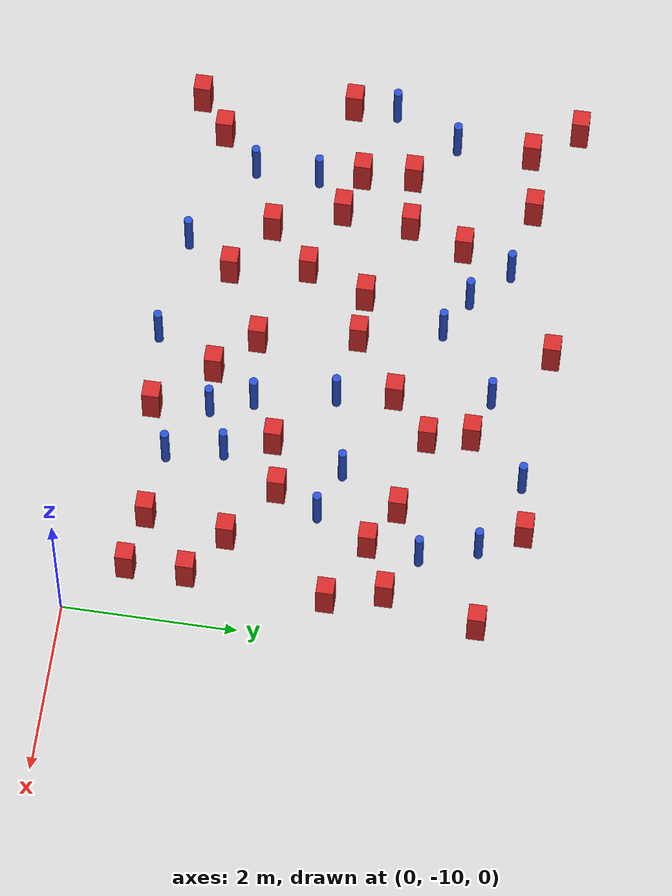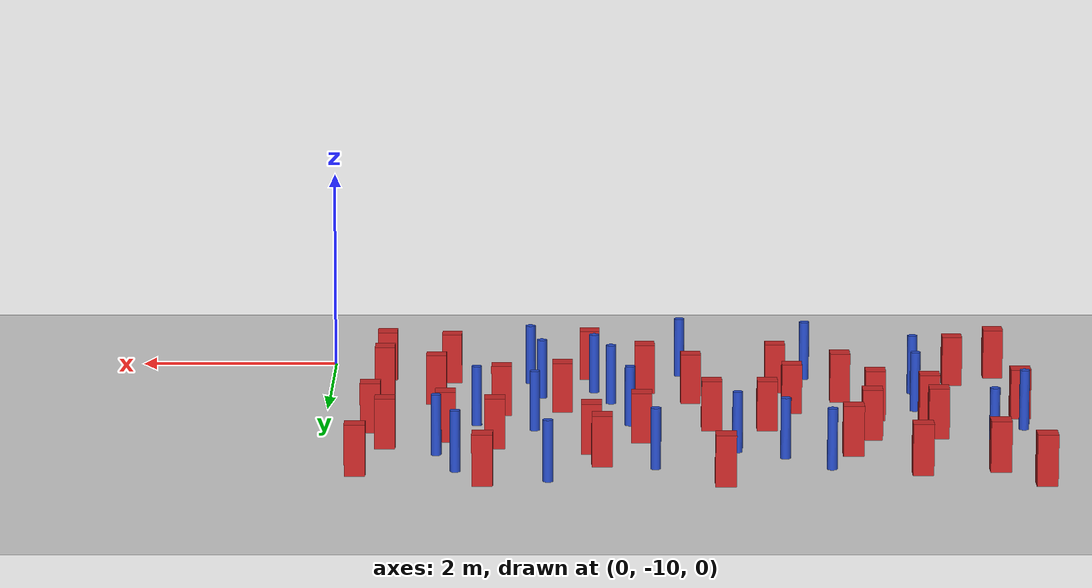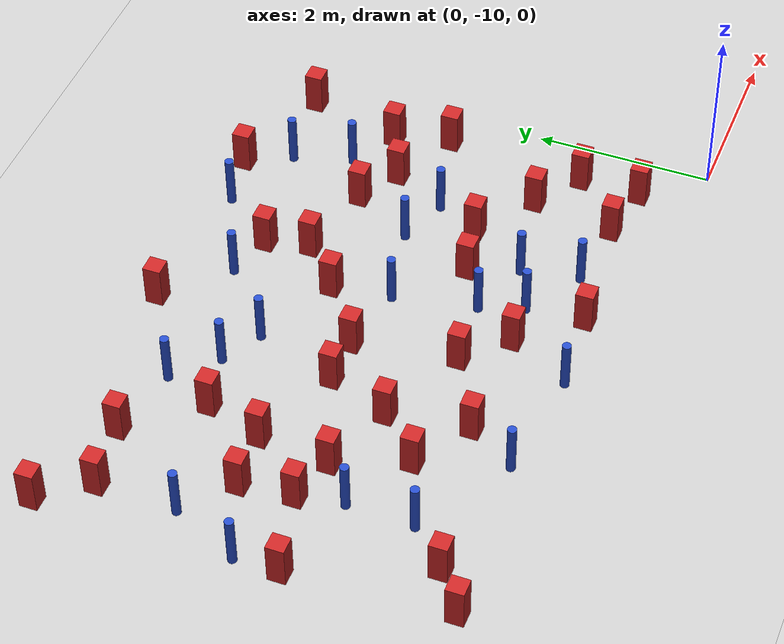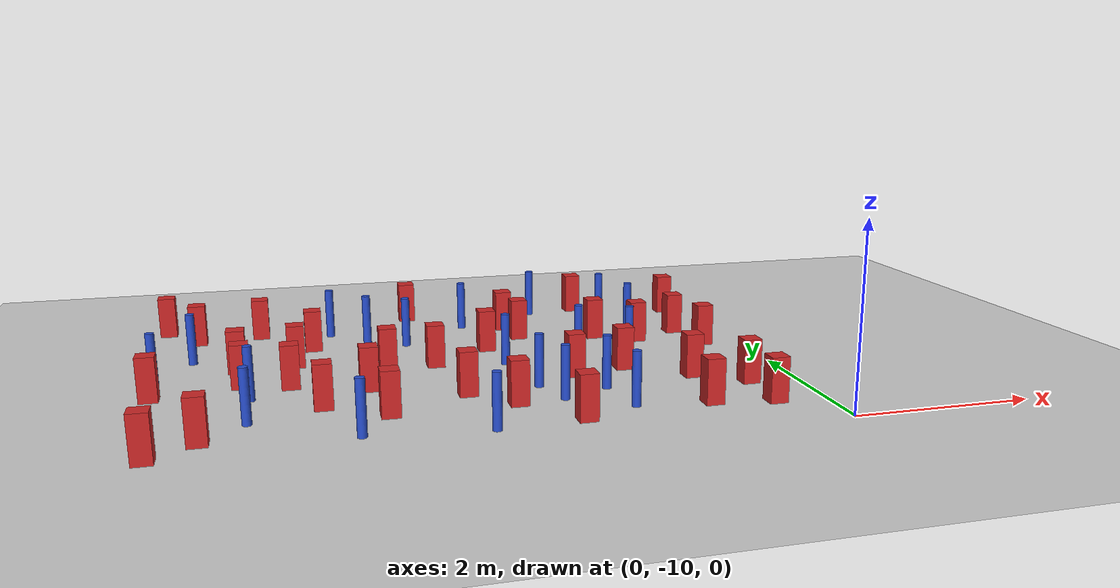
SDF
<sdf version="1.6">
 <world name="default">
  <model name="ground_plane">
   <static>1</static>
   <link name="link">
    <collision name="collision">
     <geometry><plane><normal>0 0 1</normal><size>100 100</size></plane></geometry>
     <surface><friction><ode><mu>100</mu><mu2>50</mu2></ode></friction></surface>
    </collision>
    <visual name="visual">
     <cast_shadows>0</cast_shadows>
     <geometry><plane><normal>0 0 1</normal><size>100 100</size></plane></geometry>
     <material>
      <ambient>1.0 1.0 1.0 1.0</ambient>
      <diffuse>0.8 0.8 0.8 1.0</diffuse>
      <specular>0.01 0.01 0.01 1.000000</specular>
     </material>
    </visual>
   </link>
  </model>
  <model name="pole_obstacle4">
   <static>true</static>
   <pose>-3.54911267592 -9.46715608694 -3.09024884793e-07 -7.19054271912e-07 -2.11315075137e-07 -1.93935509267e-07</pose>
   <link name="link">
    <pose>0 0 0.3 0 -0 0</pose>
    <inertial>
     <mass>1</mass>
     <inertia><ixx>0.145833</ixx><ixy>0</ixy><ixz>0</ixz><iyy>0.145833</iyy><iyz>0</iyz><izz>0.125</izz></inertia>
    </inertial>
    <collision name="collision">
     <geometry><cylinder><radius>0.05</radius><length>.6</length></cylinder></geometry>
    </collision>
    <visual name="visual">
     <geometry><cylinder><radius>0.05</radius><length>.6</length></cylinder></geometry>
     <material>
      <script><name>Gazebo/Blue</name><uri>file://media/materials/scripts/gazebo.material</uri></script>
     </material>
    </visual>
   </link>
  </model>
  <model name="square_post_obstacle2">
   <static>true</static>
   <pose>-4.63876810251 -7.87885461352 -4.36207812815e-07 3.75137919937e-06 9.77721102514e-07 2.47381364184e-05</pose>
   <link name="link">
    <pose>0 0 0.25 0 -0 0</pose>
    <inertial>
     <mass>100</mass>
     <inertia>
      <ixx>0.166667</ixx>
      <ixy>0</ixy>
      <ixz>0</ixz>
      <iyy>0.166667</iyy>
      <iyz>0</iyz>
      <izz>0.166667</izz>
     </inertia>
    </inertial>
    <collision name="collision"><geometry><box><size>.2 .2 .5</size></box></geometry></collision>
    <visual name="visual">
     <geometry><box><size>.2 .2 .5</size></box></geometry>
     <material>
      <script><name>Gazebo/Red</name><uri>file://media/materials/scripts/gazebo.material</uri></script>
     </material>
    </visual>
   </link>
  </model>
  <model name="pole_obstacle7">
   <static>true</static>
   <pose>-1.32874386624 -5.45448428314 -3.09024884793e-07 -7.19054271912e-07 -2.11315075134e-07 -1.93935509265e-07</pose>
   <link name="link">
    <pose>0 0 0.3 0 -0 0</pose>
    <inertial>
     <mass>1</mass>
     <inertia><ixx>0.145833</ixx><ixy>0</ixy><ixz>0</ixz><iyy>0.145833</iyy><iyz>0</iyz><izz>0.125</izz></inertia>
    </inertial>
    <collision name="collision">
     <geometry><cylinder><radius>0.05</radius><length>.6</length></cylinder></geometry>
    </collision>
    <visual name="visual">
     <geometry><cylinder><radius>0.05</radius><length>.6</length></cylinder></geometry>
     <material>
      <script><name>Gazebo/Blue</name><uri>file://media/materials/scripts/gazebo.material</uri></script>
     </material>
    </visual>
   </link>
  </model>
  <model name="pole_obstacle8">
   <static>true</static>
   <pose>-6.90155995579 -7.15182244249 -3.09024884793e-07 -7.19054271911e-07 -2.1131507516e-07 -1.93935509277e-07</pose>
   <link name="link">
    <pose>0 0 0.3 0 -0 0</pose>
    <inertial>
     <mass>1</mass>
     <inertia><ixx>0.145833</ixx><ixy>0</ixy><ixz>0</ixz><iyy>0.145833</iyy><iyz>0</iyz><izz>0.125</izz></inertia>
    </inertial>
    <collision name="collision">
     <geometry><cylinder><radius>0.05</radius><length>.6</length></cylinder></geometry>
    </collision>
    <visual name="visual">
     <geometry><cylinder><radius>0.05</radius><length>.6</length></cylinder></geometry>
     <material>
      <script><name>Gazebo/Blue</name><uri>file://media/materials/scripts/gazebo.material</uri></script>
     </material>
    </visual>
   </link>
  </model>
  <model name="square_post_obstacle13">
   <static>true</static>
   <pose>-1.69398379049 -6.42221799246 -4.36207812815e-07 3.75137919937e-06 9.77721102514e-07 2.47381364184e-05</pose>
   <link name="link">
    <pose>0 0 0.25 0 -0 0</pose>
    <inertial>
     <mass>100</mass>
     <inertia>
      <ixx>0.166667</ixx>
      <ixy>0</ixy>
      <ixz>0</ixz>
      <iyy>0.166667</iyy>
      <iyz>0</iyz>
      <izz>0.166667</izz>
     </inertia>
    </inertial>
    <collision name="collision"><geometry><box><size>.2 .2 .5</size></box></geometry></collision>
    <visual name="visual">
     <geometry><box><size>.2 .2 .5</size></box></geometry>
     <material>
      <script><name>Gazebo/Red</name><uri>file://media/materials/scripts/gazebo.material</uri></script>
     </material>
    </visual>
   </link>
  </model>
  <model name="pole_obstacle21">
   <static>true</static>
   <pose>-2.67258424488 -8.73272913505 -3.09024884848e-07 -7.19054271902e-07 -2.11315075199e-07 -1.93935509286e-07</pose>
   <link name="link">
    <pose>0 0 0.3 0 -0 0</pose>
    <inertial>
     <mass>1</mass>
     <inertia><ixx>0.145833</ixx><ixy>0</ixy><ixz>0</ixz><iyy>0.145833</iyy><iyz>0</iyz><izz>0.125</izz></inertia>
    </inertial>
    <collision name="collision">
     <geometry><cylinder><radius>0.05</radius><length>.6</length></cylinder></geometry>
    </collision>
    <visual name="visual">
     <geometry><cylinder><radius>0.05</radius><length>.6</length></cylinder></geometry>
     <material>
      <script><name>Gazebo/Blue</name><uri>file://media/materials/scripts/gazebo.material</uri></script>
     </material>
    </visual>
   </link>
  </model>
  <model name="pole_obstacle22">
   <static>true</static>
   <pose>-4.9305122079 -5.54442485208 -3.09024884793e-07 -7.19054271911e-07 -2.1131507516e-07 -1.93935509277e-07</pose>
   <link name="link">
    <pose>0 0 0.3 0 -0 0</pose>
    <inertial>
     <mass>1</mass>
     <inertia><ixx>0.145833</ixx><ixy>0</ixy><ixz>0</ixz><iyy>0.145833</iyy><iyz>0</iyz><izz>0.125</izz></inertia>
    </inertial>
    <collision name="collision">
     <geometry><cylinder><radius>0.05</radius><length>.6</length></cylinder></geometry>
    </collision>
    <visual name="visual">
     <geometry><cylinder><radius>0.05</radius><length>.6</length></cylinder></geometry>
     <material>
      <script><name>Gazebo/Blue</name><uri>file://media/materials/scripts/gazebo.material</uri></script>
     </material>
    </visual>
   </link>
  </model>
  <model name="pole_obstacle29">
   <static>true</static>
   <pose>-6.54652882044 -6.38740867804 -3.09024884793e-07 -7.19054271911e-07 -2.1131507516e-07 -1.93935509277e-07</pose>
   <link name="link">
    <pose>0 0 0.3 0 -0 0</pose>
    <inertial>
     <mass>1</mass>
     <inertia><ixx>0.145833</ixx><ixy>0</ixy><ixz>0</ixz><iyy>0.145833</iyy><iyz>0</iyz><izz>0.125</izz></inertia>
    </inertial>
    <collision name="collision">
     <geometry><cylinder><radius>0.05</radius><length>.6</length></cylinder></geometry>
    </collision>
    <visual name="visual">
     <geometry><cylinder><radius>0.05</radius><length>.6</length></cylinder></geometry>
     <material>
      <script><name>Gazebo/Blue</name><uri>file://media/materials/scripts/gazebo.material</uri></script>
     </material>
    </visual>
   </link>
  </model>
  <model name="square_post_obstacle28">
   <static>true</static>
   <pose>-5.78509453878 -5.38407037042 -4.36207812815e-07 3.75137919937e-06 9.77721102514e-07 2.47381364184e-05</pose>
   <link name="link">
    <pose>0 0 0.25 0 -0 0</pose>
    <inertial>
     <mass>100</mass>
     <inertia>
      <ixx>0.166667</ixx>
      <ixy>0</ixy>
      <ixz>0</ixz>
      <iyy>0.166667</iyy>
      <iyz>0</iyz>
      <izz>0.166667</izz>
     </inertia>
    </inertial>
    <collision name="collision"><geometry><box><size>.2 .2 .5</size></box></geometry></collision>
    <visual name="visual">
     <geometry><box><size>.2 .2 .5</size></box></geometry>
     <material>
      <script><name>Gazebo/Red</name><uri>file://media/materials/scripts/gazebo.material</uri></script>
     </material>
    </visual>
   </link>
  </model>
  <model name="square_post_obstacle32">
   <static>true</static>
   <pose>-2.63112076132 -6.21255872255 -4.36207812815e-07 3.75137919937e-06 9.77721102514e-07 2.47381364184e-05</pose>
   <link name="link">
    <pose>0 0 0.25 0 -0 0</pose>
    <inertial>
     <mass>100</mass>
     <inertia>
      <ixx>0.166667</ixx>
      <ixy>0</ixy>
      <ixz>0</ixz>
      <iyy>0.166667</iyy>
      <iyz>0</iyz>
      <izz>0.166667</izz>
     </inertia>
    </inertial>
    <collision name="collision"><geometry><box><size>.2 .2 .5</size></box></geometry></collision>
    <visual name="visual">
     <geometry><box><size>.2 .2 .5</size></box></geometry>
     <material>
      <script><name>Gazebo/Red</name><uri>file://media/materials/scripts/gazebo.material</uri></script>
     </material>
    </visual>
   </link>
  </model>
  <model name="square_post_obstacle33">
   <static>true</static>
   <pose>-1.59513884642 -4.96967767956 -4.36207812815e-07 3.75137919937e-06 9.77721102514e-07 2.47381364184e-05</pose>
   <link name="link">
    <pose>0 0 0.25 0 -0 0</pose>
    <inertial>
     <mass>100</mass>
     <inertia>
      <ixx>0.166667</ixx>
      <ixy>0</ixy>
      <ixz>0</ixz>
      <iyy>0.166667</iyy>
      <iyz>0</iyz>
      <izz>0.166667</izz>
     </inertia>
    </inertial>
    <collision name="collision"><geometry><box><size>.2 .2 .5</size></box></geometry></collision>
    <visual name="visual">
     <geometry><box><size>.2 .2 .5</size></box></geometry>
     <material>
      <script><name>Gazebo/Red</name><uri>file://media/materials/scripts/gazebo.material</uri></script>
     </material>
    </visual>
   </link>
  </model>
  <model name="pole_obstacle45">
   <static>true</static>
   <pose>-1.50566126562 -7.31761407004 -3.09024884793e-07 -7.19054271912e-07 -2.11315075134e-07 -1.93935509265e-07</pose>
   <link name="link">
    <pose>0 0 0.3 0 -0 0</pose>
    <inertial>
     <mass>1</mass>
     <inertia><ixx>0.145833</ixx><ixy>0</ixy><ixz>0</ixz><iyy>0.145833</iyy><iyz>0</iyz><izz>0.125</izz></inertia>
    </inertial>
    <collision name="collision">
     <geometry><cylinder><radius>0.05</radius><length>.6</length></cylinder></geometry>
    </collision>
    <visual name="visual">
     <geometry><cylinder><radius>0.05</radius><length>.6</length></cylinder></geometry>
     <material>
      <script><name>Gazebo/Blue</name><uri>file://media/materials/scripts/gazebo.material</uri></script>
     </material>
    </visual>
   </link>
  </model>
  <model name="pole_obstacle56">
   <static>true</static>
   <pose>-4.82676930628 -9.31786836573 -3.09024884793e-07 -7.19054271912e-07 -2.1131507513e-07 -1.93935509261e-07</pose>
   <link name="link">
    <pose>0 0 0.3 0 -0 0</pose>
    <inertial>
     <mass>1</mass>
     <inertia><ixx>0.145833</ixx><ixy>0</ixy><ixz>0</ixz><iyy>0.145833</iyy><iyz>0</iyz><izz>0.125</izz></inertia>
    </inertial>
    <collision name="collision">
     <geometry><cylinder><radius>0.05</radius><length>.6</length></cylinder></geometry>
    </collision>
    <visual name="visual">
     <geometry><cylinder><radius>0.05</radius><length>.6</length></cylinder></geometry>
     <material>
      <script><name>Gazebo/Blue</name><uri>file://media/materials/scripts/gazebo.material</uri></script>
     </material>
    </visual>
   </link>
  </model>
  <model name="square_post_obstacle53">
   <static>true</static>
   <pose>-5.1628788721 -6.1271187025 -4.36207812815e-07 3.75137919937e-06 9.77721102514e-07 2.47381364184e-05</pose>
   <link name="link">
    <pose>0 0 0.25 0 -0 0</pose>
    <inertial>
     <mass>100</mass>
     <inertia>
      <ixx>0.166667</ixx>
      <ixy>0</ixy>
      <ixz>0</ixz>
      <iyy>0.166667</iyy>
      <iyz>0</iyz>
      <izz>0.166667</izz>
     </inertia>
    </inertial>
    <collision name="collision"><geometry><box><size>.2 .2 .5</size></box></geometry></collision>
    <visual name="visual">
     <geometry><box><size>.2 .2 .5</size></box></geometry>
     <material>
      <script><name>Gazebo/Red</name><uri>file://media/materials/scripts/gazebo.material</uri></script>
     </material>
    </visual>
   </link>
  </model>
  <model name="square_post_obstacle68">
   <static>true</static>
   <pose>-3.18331321468 -8.76154640307 -4.36207812815e-07 3.75137919937e-06 9.77721102514e-07 2.47381364184e-05</pose>
   <link name="link">
    <pose>0 0 0.25 0 -0 0</pose>
    <inertial>
     <mass>100</mass>
     <inertia>
      <ixx>0.166667</ixx>
      <ixy>0</ixy>
      <ixz>0</ixz>
      <iyy>0.166667</iyy>
      <iyz>0</iyz>
      <izz>0.166667</izz>
     </inertia>
    </inertial>
    <collision name="collision"><geometry><box><size>.2 .2 .5</size></box></geometry></collision>
    <visual name="visual">
     <geometry><box><size>.2 .2 .5</size></box></geometry>
     <material>
      <script><name>Gazebo/Red</name><uri>file://media/materials/scripts/gazebo.material</uri></script>
     </material>
    </visual>
   </link>
  </model>
  <model name="pole_obstacle83">
   <static>true</static>
   <pose>-4.04569714888 -6.22195129584 -3.09024884793e-07 -7.19054271911e-07 -2.11315075165e-07 -1.9393550928e-07</pose>
   <link name="link">
    <pose>0 0 0.3 0 -0 0</pose>
    <inertial>
     <mass>1</mass>
     <inertia><ixx>0.145833</ixx><ixy>0</ixy><ixz>0</ixz><iyy>0.145833</iyy><iyz>0</iyz><izz>0.125</izz></inertia>
    </inertial>
    <collision name="collision">
     <geometry><cylinder><radius>0.05</radius><length>.6</length></cylinder></geometry>
    </collision>
    <visual name="visual">
     <geometry><cylinder><radius>0.05</radius><length>.6</length></cylinder></geometry>
     <material>
      <script><name>Gazebo/Blue</name><uri>file://media/materials/scripts/gazebo.material</uri></script>
     </material>
    </visual>
   </link>
  </model>
  <model name="pole_obstacle85">
   <static>true</static>
   <pose>-2.21622739993 -5.0715159325 -3.09024884793e-07 -7.19054271912e-07 -2.11315075134e-07 -1.93935509266e-07</pose>
   <link name="link">
    <pose>0 0 0.3 0 -0 0</pose>
    <inertial>
     <mass>1</mass>
     <inertia><ixx>0.145833</ixx><ixy>0</ixy><ixz>0</ixz><iyy>0.145833</iyy><iyz>0</iyz><izz>0.125</izz></inertia>
    </inertial>
    <collision name="collision">
     <geometry><cylinder><radius>0.05</radius><length>.6</length></cylinder></geometry>
    </collision>
    <visual name="visual">
     <geometry><cylinder><radius>0.05</radius><length>.6</length></cylinder></geometry>
     <material>
      <script><name>Gazebo/Blue</name><uri>file://media/materials/scripts/gazebo.material</uri></script>
     </material>
    </visual>
   </link>
  </model>
  <model name="square_post_obstacle73">
   <static>true</static>
   <pose>-1.08363461659 -8.29414032909 -4.36207812815e-07 3.75137919937e-06 9.77721102514e-07 2.47381364184e-05</pose>
   <link name="link">
    <pose>0 0 0.25 0 -0 0</pose>
    <inertial>
     <mass>100</mass>
     <inertia>
      <ixx>0.166667</ixx>
      <ixy>0</ixy>
      <ixz>0</ixz>
      <iyy>0.166667</iyy>
      <iyz>0</iyz>
      <izz>0.166667</izz>
     </inertia>
    </inertial>
    <collision name="collision"><geometry><box><size>.2 .2 .5</size></box></geometry></collision>
    <visual name="visual">
     <geometry><box><size>.2 .2 .5</size></box></geometry>
     <material>
      <script><name>Gazebo/Red</name><uri>file://media/materials/scripts/gazebo.material</uri></script>
     </material>
    </visual>
   </link>
  </model>
  <model name="square_post_obstacle79">
   <static>true</static>
   <pose>-0.462387392611 -7.06722271873 -4.36207812815e-07 3.75137919937e-06 9.77721102514e-07 2.47381364184e-05</pose>
   <link name="link">
    <pose>0 0 0.25 0 -0 0</pose>
    <inertial>
     <mass>100</mass>
     <inertia>
      <ixx>0.166667</ixx>
      <ixy>0</ixy>
      <ixz>0</ixz>
      <iyy>0.166667</iyy>
      <iyz>0</iyz>
      <izz>0.166667</izz>
     </inertia>
    </inertial>
    <collision name="collision"><geometry><box><size>.2 .2 .5</size></box></geometry></collision>
    <visual name="visual">
     <geometry><box><size>.2 .2 .5</size></box></geometry>
     <material>
      <script><name>Gazebo/Red</name><uri>file://media/materials/scripts/gazebo.material</uri></script>
     </material>
    </visual>
   </link>
  </model>
  <model name="square_post_obstacle83">
   <static>true</static>
   <pose>-0.375834240988 -5.35439321015 -4.36207812815e-07 3.75137919937e-06 9.77721102514e-07 2.47381364184e-05</pose>
   <link name="link">
    <pose>0 0 0.25 0 -0 0</pose>
    <inertial>
     <mass>100</mass>
     <inertia>
      <ixx>0.166667</ixx>
      <ixy>0</ixy>
      <ixz>0</ixz>
      <iyy>0.166667</iyy>
      <iyz>0</iyz>
      <izz>0.166667</izz>
     </inertia>
    </inertial>
    <collision name="collision"><geometry><box><size>.2 .2 .5</size></box></geometry></collision>
    <visual name="visual">
     <geometry><box><size>.2 .2 .5</size></box></geometry>
     <material>
      <script><name>Gazebo/Red</name><uri>file://media/materials/scripts/gazebo.material</uri></script>
     </material>
    </visual>
   </link>
  </model>
  <model name="pole_obstacle91">
   <static>true</static>
   <pose>-2.07730614821 -7.11129060422 -3.09024884793e-07 -7.19054271912e-07 -2.11315075134e-07 -1.93935509266e-07</pose>
   <link name="link">
    <pose>0 0 0.3 0 -0 0</pose>
    <inertial>
     <mass>1</mass>
     <inertia><ixx>0.145833</ixx><ixy>0</ixy><ixz>0</ixz><iyy>0.145833</iyy><iyz>0</iyz><izz>0.125</izz></inertia>
    </inertial>
    <collision name="collision">
     <geometry><cylinder><radius>0.05</radius><length>.6</length></cylinder></geometry>
    </collision>
    <visual name="visual">
     <geometry><cylinder><radius>0.05</radius><length>.6</length></cylinder></geometry>
     <material>
      <script><name>Gazebo/Blue</name><uri>file://media/materials/scripts/gazebo.material</uri></script>
     </material>
    </visual>
   </link>
  </model>
  <model name="square_post_obstacle85">
   <static>true</static>
   <pose>-3.63907003503 -8.32041665443 -4.36207812815e-07 3.75137919937e-06 9.77721102514e-07 2.47381364184e-05</pose>
   <link name="link">
    <pose>0 0 0.25 0 -0 0</pose>
    <inertial>
     <mass>100</mass>
     <inertia>
      <ixx>0.166667</ixx>
      <ixy>0</ixy>
      <ixz>0</ixz>
      <iyy>0.166667</iyy>
      <iyz>0</iyz>
      <izz>0.166667</izz>
     </inertia>
    </inertial>
    <collision name="collision"><geometry><box><size>.2 .2 .5</size></box></geometry></collision>
    <visual name="visual">
     <geometry><box><size>.2 .2 .5</size></box></geometry>
     <material>
      <script><name>Gazebo/Red</name><uri>file://media/materials/scripts/gazebo.material</uri></script>
     </material>
    </visual>
   </link>
  </model>
  <model name="pole_obstacle97">
   <static>true</static>
   <pose>-5.87562555564 -7.93507047214 -3.09024884793e-07 -7.19054271911e-07 -2.1131507516e-07 -1.93935509277e-07</pose>
   <link name="link">
    <pose>0 0 0.3 0 -0 0</pose>
    <inertial>
     <mass>1</mass>
     <inertia><ixx>0.145833</ixx><ixy>0</ixy><ixz>0</ixz><iyy>0.145833</iyy><iyz>0</iyz><izz>0.125</izz></inertia>
    </inertial>
    <collision name="collision">
     <geometry><cylinder><radius>0.05</radius><length>.6</length></cylinder></geometry>
    </collision>
    <visual name="visual">
     <geometry><cylinder><radius>0.05</radius><length>.6</length></cylinder></geometry>
     <material>
      <script><name>Gazebo/Blue</name><uri>file://media/materials/scripts/gazebo.material</uri></script>
     </material>
    </visual>
   </link>
  </model>
  <model name="square_post_obstacle92">
   <static>true</static>
   <pose>-1.22222385012 -9.2326577001 -4.36207812815e-07 3.75137919937e-06 9.77721102514e-07 2.47381364184e-05</pose>
   <link name="link">
    <pose>0 0 0.25 0 -0 0</pose>
    <inertial>
     <mass>100</mass>
     <inertia>
      <ixx>0.166667</ixx>
      <ixy>0</ixy>
      <ixz>0</ixz>
      <iyy>0.166667</iyy>
      <iyz>0</iyz>
      <izz>0.166667</izz>
     </inertia>
    </inertial>
    <collision name="collision"><geometry><box><size>.2 .2 .5</size></box></geometry></collision>
    <visual name="visual">
     <geometry><box><size>.2 .2 .5</size></box></geometry>
     <material>
      <script><name>Gazebo/Red</name><uri>file://media/materials/scripts/gazebo.material</uri></script>
     </material>
    </visual>
   </link>
  </model>
  <model name="square_post_obstacle96">
   <static>true</static>
   <pose>-3.82071374134 -7.17311130145 -4.36207812815e-07 3.75137919937e-06 9.77721102514e-07 2.47381364184e-05</pose>
   <link name="link">
    <pose>0 0 0.25 0 -0 0</pose>
    <inertial>
     <mass>100</mass>
     <inertia>
      <ixx>0.166667</ixx>
      <ixy>0</ixy>
      <ixz>0</ixz>
      <iyy>0.166667</iyy>
      <iyz>0</iyz>
      <izz>0.166667</izz>
     </inertia>
    </inertial>
    <collision name="collision"><geometry><box><size>.2 .2 .5</size></box></geometry></collision>
    <visual name="visual">
     <geometry><box><size>.2 .2 .5</size></box></geometry>
     <material>
      <script><name>Gazebo/Red</name><uri>file://media/materials/scripts/gazebo.material</uri></script>
     </material>
    </visual>
   </link>
  </model>
  <model name="square_post_obstacle102">
   <static>true</static>
   <pose>-1.20894904369 -6.69948248898 -4.36207812815e-07 3.75137919937e-06 9.77721102514e-07 2.47381364184e-05</pose>
   <link name="link">
    <pose>0 0 0.25 0 -0 0</pose>
    <inertial>
     <mass>100</mass>
     <inertia>
      <ixx>0.166667</ixx>
      <ixy>0</ixy>
      <ixz>0</ixz>
      <iyy>0.166667</iyy>
      <iyz>0</iyz>
      <izz>0.166667</izz>
     </inertia>
    </inertial>
    <collision name="collision"><geometry><box><size>.2 .2 .5</size></box></geometry></collision>
    <visual name="visual">
     <geometry><box><size>.2 .2 .5</size></box></geometry>
     <material>
      <script><name>Gazebo/Red</name><uri>file://media/materials/scripts/gazebo.material</uri></script>
     </material>
    </visual>
   </link>
  </model>
  <model name="square_post_obstacle113">
   <static>true</static>
   <pose>-2.73154833075 -5.7167195452 -4.36207812815e-07 3.75137919937e-06 9.77721102514e-07 2.47381364184e-05</pose>
   <link name="link">
    <pose>0 0 0.25 0 -0 0</pose>
    <inertial>
     <mass>100</mass>
     <inertia>
      <ixx>0.166667</ixx>
      <ixy>0</ixy>
      <ixz>0</ixz>
      <iyy>0.166667</iyy>
      <iyz>0</iyz>
      <izz>0.166667</izz>
     </inertia>
    </inertial>
    <collision name="collision"><geometry><box><size>.2 .2 .5</size></box></geometry></collision>
    <visual name="visual">
     <geometry><box><size>.2 .2 .5</size></box></geometry>
     <material>
      <script><name>Gazebo/Red</name><uri>file://media/materials/scripts/gazebo.material</uri></script>
     </material>
    </visual>
   </link>
  </model>
  <model name="square_post_obstacle115">
   <static>true</static>
   <pose>-6.53424473636 -5.50267682959 -4.36207812815e-07 3.75137919937e-06 9.77721102514e-07 2.47381364184e-05</pose>
   <link name="link">
    <pose>0 0 0.25 0 -0 0</pose>
    <inertial>
     <mass>100</mass>
     <inertia>
      <ixx>0.166667</ixx>
      <ixy>0</ixy>
      <ixz>0</ixz>
      <iyy>0.166667</iyy>
      <iyz>0</iyz>
      <izz>0.166667</izz>
     </inertia>
    </inertial>
    <collision name="collision"><geometry><box><size>.2 .2 .5</size></box></geometry></collision>
    <visual name="visual">
     <geometry><box><size>.2 .2 .5</size></box></geometry>
     <material>
      <script><name>Gazebo/Red</name><uri>file://media/materials/scripts/gazebo.material</uri></script>
     </material>
    </visual>
   </link>
  </model>
  <model name="square_post_obstacle119">
   <static>true</static>
   <pose>-6.03676518726 -6.83702602789 -4.36207812815e-07 3.75137919937e-06 9.77721102514e-07 2.47381364184e-05</pose>
   <link name="link">
    <pose>0 0 0.25 0 -0 0</pose>
    <inertial>
     <mass>100</mass>
     <inertia>
      <ixx>0.166667</ixx>
      <ixy>0</ixy>
      <ixz>0</ixz>
      <iyy>0.166667</iyy>
      <iyz>0</iyz>
      <izz>0.166667</izz>
     </inertia>
    </inertial>
    <collision name="collision"><geometry><box><size>.2 .2 .5</size></box></geometry></collision>
    <visual name="visual">
     <geometry><box><size>.2 .2 .5</size></box></geometry>
     <material>
      <script><name>Gazebo/Red</name><uri>file://media/materials/scripts/gazebo.material</uri></script>
     </material>
    </visual>
   </link>
  </model>
  <model name="pole_obstacle121">
   <static>true</static>
   <pose>-5.89409895959 -8.68732293891 -3.09024884793e-07 -7.19054271912e-07 -2.1131507513e-07 -1.93935509261e-07</pose>
   <link name="link">
    <pose>0 0 0.3 0 -0 0</pose>
    <inertial>
     <mass>1</mass>
     <inertia><ixx>0.145833</ixx><ixy>0</ixy><ixz>0</ixz><iyy>0.145833</iyy><iyz>0</iyz><izz>0.125</izz></inertia>
    </inertial>
    <collision name="collision">
     <geometry><cylinder><radius>0.05</radius><length>.6</length></cylinder></geometry>
    </collision>
    <visual name="visual">
     <geometry><cylinder><radius>0.05</radius><length>.6</length></cylinder></geometry>
     <material>
      <script><name>Gazebo/Blue</name><uri>file://media/materials/scripts/gazebo.material</uri></script>
     </material>
    </visual>
   </link>
  </model>
  <model name="pole_obstacle124">
   <static>true</static>
   <pose>-2.14358746286 -8.48767758833 -3.09024884848e-07 -7.19054271902e-07 -2.11315075199e-07 -1.93935509286e-07</pose>
   <link name="link">
    <pose>0 0 0.3 0 -0 0</pose>
    <inertial>
     <mass>1</mass>
     <inertia><ixx>0.145833</ixx><ixy>0</ixy><ixz>0</ixz><iyy>0.145833</iyy><iyz>0</iyz><izz>0.125</izz></inertia>
    </inertial>
    <collision name="collision">
     <geometry><cylinder><radius>0.05</radius><length>.6</length></cylinder></geometry>
    </collision>
    <visual name="visual">
     <geometry><cylinder><radius>0.05</radius><length>.6</length></cylinder></geometry>
     <material>
      <script><name>Gazebo/Blue</name><uri>file://media/materials/scripts/gazebo.material</uri></script>
     </material>
    </visual>
   </link>
  </model>
  <model name="square_post_obstacle127">
   <static>true</static>
   <pose>-5.14346551666 -8.3738274576 -4.36207812815e-07 3.75137919937e-06 9.77721102514e-07 2.47381364184e-05</pose>
   <link name="link">
    <pose>0 0 0.25 0 -0 0</pose>
    <inertial>
     <mass>100</mass>
     <inertia>
      <ixx>0.166667</ixx>
      <ixy>0</ixy>
      <ixz>0</ixz>
      <iyy>0.166667</iyy>
      <iyz>0</iyz>
      <izz>0.166667</izz>
     </inertia>
    </inertial>
    <collision name="collision"><geometry><box><size>.2 .2 .5</size></box></geometry></collision>
    <visual name="visual">
     <geometry><box><size>.2 .2 .5</size></box></geometry>
     <material>
      <script><name>Gazebo/Red</name><uri>file://media/materials/scripts/gazebo.material</uri></script>
     </material>
    </visual>
   </link>
  </model>
  <model name="square_post_obstacle137">
   <static>true</static>
   <pose>-5.98212267594 -7.4334059258 -4.36207812815e-07 3.75137919937e-06 9.77721102514e-07 2.47381364184e-05</pose>
   <link name="link">
    <pose>0 0 0.25 0 -0 0</pose>
    <inertial>
     <mass>100</mass>
     <inertia>
      <ixx>0.166667</ixx>
      <ixy>0</ixy>
      <ixz>0</ixz>
      <iyy>0.166667</iyy>
      <iyz>0</iyz>
      <izz>0.166667</izz>
     </inertia>
    </inertial>
    <collision name="collision"><geometry><box><size>.2 .2 .5</size></box></geometry></collision>
    <visual name="visual">
     <geometry><box><size>.2 .2 .5</size></box></geometry>
     <material>
      <script><name>Gazebo/Red</name><uri>file://media/materials/scripts/gazebo.material</uri></script>
     </material>
    </visual>
   </link>
  </model>
  <model name="square_post_obstacle142">
   <static>true</static>
   <pose>-6.32522122949 -9.12267924544 -4.36207812815e-07 3.75137919937e-06 9.77721102514e-07 2.47381364184e-05</pose>
   <link name="link">
    <pose>0 0 0.25 0 -0 0</pose>
    <inertial>
     <mass>100</mass>
     <inertia>
      <ixx>0.166667</ixx>
      <ixy>0</ixy>
      <ixz>0</ixz>
      <iyy>0.166667</iyy>
      <iyz>0</iyz>
      <izz>0.166667</izz>
     </inertia>
    </inertial>
    <collision name="collision"><geometry><box><size>.2 .2 .5</size></box></geometry></collision>
    <visual name="visual">
     <geometry><box><size>.2 .2 .5</size></box></geometry>
     <material>
      <script><name>Gazebo/Red</name><uri>file://media/materials/scripts/gazebo.material</uri></script>
     </material>
    </visual>
   </link>
  </model>
  <model name="square_post_obstacle143">
   <static>true</static>
   <pose>-4.50347945342 -8.78079890541 -4.36207812815e-07 3.75137919937e-06 9.77721102514e-07 2.47381364184e-05</pose>
   <link name="link">
    <pose>0 0 0.25 0 -0 0</pose>
    <inertial>
     <mass>100</mass>
     <inertia>
      <ixx>0.166667</ixx>
      <ixy>0</ixy>
      <ixz>0</ixz>
      <iyy>0.166667</iyy>
      <iyz>0</iyz>
      <izz>0.166667</izz>
     </inertia>
    </inertial>
    <collision name="collision"><geometry><box><size>.2 .2 .5</size></box></geometry></collision>
    <visual name="visual">
     <geometry><box><size>.2 .2 .5</size></box></geometry>
     <material>
      <script><name>Gazebo/Red</name><uri>file://media/materials/scripts/gazebo.material</uri></script>
     </material>
    </visual>
   </link>
  </model>
  <model name="square_post_obstacle146">
   <static>true</static>
   <pose>-4.36669142223 -7.17184897379 -4.36207812815e-07 3.75137919937e-06 9.77721102514e-07 2.47381364184e-05</pose>
   <link name="link">
    <pose>0 0 0.25 0 -0 0</pose>
    <inertial>
     <mass>100</mass>
     <inertia>
      <ixx>0.166667</ixx>
      <ixy>0</ixy>
      <ixz>0</ixz>
      <iyy>0.166667</iyy>
      <iyz>0</iyz>
      <izz>0.166667</izz>
     </inertia>
    </inertial>
    <collision name="collision"><geometry><box><size>.2 .2 .5</size></box></geometry></collision>
    <visual name="visual">
     <geometry><box><size>.2 .2 .5</size></box></geometry>
     <material>
      <script><name>Gazebo/Red</name><uri>file://media/materials/scripts/gazebo.material</uri></script>
     </material>
    </visual>
   </link>
  </model>
  <model name="square_post_obstacle149">
   <static>true</static>
   <pose>-0.627063404263 -6.42658471467 -4.36207812815e-07 3.75137919937e-06 9.77721102514e-07 2.47381364184e-05</pose>
   <link name="link">
    <pose>0 0 0.25 0 -0 0</pose>
    <inertial>
     <mass>100</mass>
     <inertia>
      <ixx>0.166667</ixx>
      <ixy>0</ixy>
      <ixz>0</ixz>
      <iyy>0.166667</iyy>
      <iyz>0</iyz>
      <izz>0.166667</izz>
     </inertia>
    </inertial>
    <collision name="collision"><geometry><box><size>.2 .2 .5</size></box></geometry></collision>
    <visual name="visual">
     <geometry><box><size>.2 .2 .5</size></box></geometry>
     <material>
      <script><name>Gazebo/Red</name><uri>file://media/materials/scripts/gazebo.material</uri></script>
     </material>
    </visual>
   </link>
  </model>
  <model name="square_post_obstacle150">
   <static>true</static>
   <pose>-0.560272423189 -9.35285659635 -4.36207812815e-07 3.75137919937e-06 9.77721102514e-07 2.47381364184e-05</pose>
   <link name="link">
    <pose>0 0 0.25 0 -0 0</pose>
    <inertial>
     <mass>100</mass>
     <inertia>
      <ixx>0.166667</ixx>
      <ixy>0</ixy>
      <ixz>0</ixz>
      <iyy>0.166667</iyy>
      <iyz>0</iyz>
      <izz>0.166667</izz>
     </inertia>
    </inertial>
    <collision name="collision"><geometry><box><size>.2 .2 .5</size></box></geometry></collision>
    <visual name="visual">
     <geometry><box><size>.2 .2 .5</size></box></geometry>
     <material>
      <script><name>Gazebo/Red</name><uri>file://media/materials/scripts/gazebo.material</uri></script>
     </material>
    </visual>
   </link>
  </model>
  <model name="pole_obstacle161">
   <static>true</static>
   <pose>-3.01815234022 -7.31724653293 -3.09024884793e-07 -7.19054271912e-07 -2.11315075134e-07 -1.93935509266e-07</pose>
   <link name="link">
    <pose>0 0 0.3 0 -0 0</pose>
    <inertial>
     <mass>1</mass>
     <inertia><ixx>0.145833</ixx><ixy>0</ixy><ixz>0</ixz><iyy>0.145833</iyy><iyz>0</iyz><izz>0.125</izz></inertia>
    </inertial>
    <collision name="collision">
     <geometry><cylinder><radius>0.05</radius><length>.6</length></cylinder></geometry>
    </collision>
    <visual name="visual">
     <geometry><cylinder><radius>0.05</radius><length>.6</length></cylinder></geometry>
     <material>
      <script><name>Gazebo/Blue</name><uri>file://media/materials/scripts/gazebo.material</uri></script>
     </material>
    </visual>
   </link>
  </model>
  <model name="pole_obstacle163">
   <static>true</static>
   <pose>-2.83919398831 -8.24533930875 -3.09024884848e-07 -7.19054271902e-07 -2.11315075199e-07 -1.93935509286e-07</pose>
   <link name="link">
    <pose>0 0 0.3 0 -0 0</pose>
    <inertial>
     <mass>1</mass>
     <inertia><ixx>0.145833</ixx><ixy>0</ixy><ixz>0</ixz><iyy>0.145833</iyy><iyz>0</iyz><izz>0.125</izz></inertia>
    </inertial>
    <collision name="collision">
     <geometry><cylinder><radius>0.05</radius><length>.6</length></cylinder></geometry>
    </collision>
    <visual name="visual">
     <geometry><cylinder><radius>0.05</radius><length>.6</length></cylinder></geometry>
     <material>
      <script><name>Gazebo/Blue</name><uri>file://media/materials/scripts/gazebo.material</uri></script>
     </material>
    </visual>
   </link>
  </model>
  <model name="square_post_obstacle165">
   <static>true</static>
   <pose>-6.76825716985 -9.45603056044 -4.36207812815e-07 3.75137919937e-06 9.77721102514e-07 2.47381364184e-05</pose>
   <link name="link">
    <pose>0 0 0.25 0 -0 0</pose>
    <inertial>
     <mass>100</mass>
     <inertia>
      <ixx>0.166667</ixx>
      <ixy>0</ixy>
      <ixz>0</ixz>
      <iyy>0.166667</iyy>
      <iyz>0</iyz>
      <izz>0.166667</izz>
     </inertia>
    </inertial>
    <collision name="collision"><geometry><box><size>.2 .2 .5</size></box></geometry></collision>
    <visual name="visual">
     <geometry><box><size>.2 .2 .5</size></box></geometry>
     <material>
      <script><name>Gazebo/Red</name><uri>file://media/materials/scripts/gazebo.material</uri></script>
     </material>
    </visual>
   </link>
  </model>
  <model name="square_post_obstacle170">
   <static>true</static>
   <pose>-5.38136964573 -6.78220444738 -4.36207812815e-07 3.75137919937e-06 9.77721102514e-07 2.47381364184e-05</pose>
   <link name="link">
    <pose>0 0 0.25 0 -0 0</pose>
    <inertial>
     <mass>100</mass>
     <inertia>
      <ixx>0.166667</ixx>
      <ixy>0</ixy>
      <ixz>0</ixz>
      <iyy>0.166667</iyy>
      <iyz>0</iyz>
      <izz>0.166667</izz>
     </inertia>
    </inertial>
    <collision name="collision"><geometry><box><size>.2 .2 .5</size></box></geometry></collision>
    <visual name="visual">
     <geometry><box><size>.2 .2 .5</size></box></geometry>
     <material>
      <script><name>Gazebo/Red</name><uri>file://media/materials/scripts/gazebo.material</uri></script>
     </material>
    </visual>
   </link>
  </model>
  <model name="pole_obstacle179">
   <static>true</static>
   <pose>-4.50184673458 -5.97089225551 -3.09024884793e-07 -7.19054271911e-07 -2.1131507516e-07 -1.93935509277e-07</pose>
   <link name="link">
    <pose>0 0 0.3 0 -0 0</pose>
    <inertial>
     <mass>1</mass>
     <inertia><ixx>0.145833</ixx><ixy>0</ixy><ixz>0</ixz><iyy>0.145833</iyy><iyz>0</iyz><izz>0.125</izz></inertia>
    </inertial>
    <collision name="collision">
     <geometry><cylinder><radius>0.05</radius><length>.6</length></cylinder></geometry>
    </collision>
    <visual name="visual">
     <geometry><cylinder><radius>0.05</radius><length>.6</length></cylinder></geometry>
     <material>
      <script><name>Gazebo/Blue</name><uri>file://media/materials/scripts/gazebo.material</uri></script>
     </material>
    </visual>
   </link>
  </model>
  <model name="square_post_obstacle175">
   <static>true</static>
   <pose>-2.62727958758 -9.39196582717 -4.36207812815e-07 3.75137919937e-06 9.77721102514e-07 2.47381364184e-05</pose>
   <link name="link">
    <pose>0 0 0.25 0 -0 0</pose>
    <inertial>
     <mass>100</mass>
     <inertia>
      <ixx>0.166667</ixx>
      <ixy>0</ixy>
      <ixz>0</ixz>
      <iyy>0.166667</iyy>
      <iyz>0</iyz>
      <izz>0.166667</izz>
     </inertia>
    </inertial>
    <collision name="collision"><geometry><box><size>.2 .2 .5</size></box></geometry></collision>
    <visual name="visual">
     <geometry><box><size>.2 .2 .5</size></box></geometry>
     <material>
      <script><name>Gazebo/Red</name><uri>file://media/materials/scripts/gazebo.material</uri></script>
     </material>
    </visual>
   </link>
  </model>
  <model name="square_post_obstacle178">
   <static>true</static>
   <pose>-3.89574122555 -4.94363436844 -4.36207812815e-07 3.75137919937e-06 9.77721102514e-07 2.47381364184e-05</pose>
   <link name="link">
    <pose>0 0 0.25 0 -0 0</pose>
    <inertial>
     <mass>100</mass>
     <inertia>
      <ixx>0.166667</ixx>
      <ixy>0</ixy>
      <ixz>0</ixz>
      <iyy>0.166667</iyy>
      <iyz>0</iyz>
      <izz>0.166667</izz>
     </inertia>
    </inertial>
    <collision name="collision"><geometry><box><size>.2 .2 .5</size></box></geometry></collision>
    <visual name="visual">
     <geometry><box><size>.2 .2 .5</size></box></geometry>
     <material>
      <script><name>Gazebo/Red</name><uri>file://media/materials/scripts/gazebo.material</uri></script>
     </material>
    </visual>
   </link>
  </model>
  <model name="square_post_obstacle180">
   <static>true</static>
   <pose>-0.554301222641 -8.66537740519 -4.36207812815e-07 3.75137919937e-06 9.77721102514e-07 2.47381364184e-05</pose>
   <link name="link">
    <pose>0 0 0.25 0 -0 0</pose>
    <inertial>
     <mass>100</mass>
     <inertia>
      <ixx>0.166667</ixx>
      <ixy>0</ixy>
      <ixz>0</ixz>
      <iyy>0.166667</iyy>
      <iyz>0</iyz>
      <izz>0.166667</izz>
     </inertia>
    </inertial>
    <collision name="collision"><geometry><box><size>.2 .2 .5</size></box></geometry></collision>
    <visual name="visual">
     <geometry><box><size>.2 .2 .5</size></box></geometry>
     <material>
      <script><name>Gazebo/Red</name><uri>file://media/materials/scripts/gazebo.material</uri></script>
     </material>
    </visual>
   </link>
  </model>
  <model name="square_post_obstacle181">
   <static>true</static>
   <pose>-3.12432930727 -6.65857003474 -4.36207812815e-07 3.75137919937e-06 9.77721102514e-07 2.47381364184e-05</pose>
   <link name="link">
    <pose>0 0 0.25 0 -0 0</pose>
    <inertial>
     <mass>100</mass>
     <inertia>
      <ixx>0.166667</ixx>
      <ixy>0</ixy>
      <ixz>0</ixz>
      <iyy>0.166667</iyy>
      <iyz>0</iyz>
      <izz>0.166667</izz>
     </inertia>
    </inertial>
    <collision name="collision"><geometry><box><size>.2 .2 .5</size></box></geometry></collision>
    <visual name="visual">
     <geometry><box><size>.2 .2 .5</size></box></geometry>
     <material>
      <script><name>Gazebo/Red</name><uri>file://media/materials/scripts/gazebo.material</uri></script>
     </material>
    </visual>
   </link>
  </model>
  <model name="pole_obstacle183">
   <static>true</static>
   <pose>-1.13245090644 -6.10645161013 -3.09024884793e-07 -7.19054271912e-07 -2.11315075134e-07 -1.93935509265e-07</pose>
   <link name="link">
    <pose>0 0 0.3 0 -0 0</pose>
    <inertial>
     <mass>1</mass>
     <inertia><ixx>0.145833</ixx><ixy>0</ixy><ixz>0</ixz><iyy>0.145833</iyy><iyz>0</iyz><izz>0.125</izz></inertia>
    </inertial>
    <collision name="collision">
     <geometry><cylinder><radius>0.05</radius><length>.6</length></cylinder></geometry>
    </collision>
    <visual name="visual">
     <geometry><cylinder><radius>0.05</radius><length>.6</length></cylinder></geometry>
     <material>
      <script><name>Gazebo/Blue</name><uri>file://media/materials/scripts/gazebo.material</uri></script>
     </material>
    </visual>
   </link>
  </model>
  <model name="square_post_obstacle184">
   <static>true</static>
   <pose>-6.90271491954 -7.66211317797 -4.36207812815e-07 3.75137919937e-06 9.77721102514e-07 2.47381364184e-05</pose>
   <link name="link">
    <pose>0 0 0.25 0 -0 0</pose>
    <inertial>
     <mass>100</mass>
     <inertia>
      <ixx>0.166667</ixx>
      <ixy>0</ixy>
      <ixz>0</ixz>
      <iyy>0.166667</iyy>
      <iyz>0</iyz>
      <izz>0.166667</izz>
     </inertia>
    </inertial>
    <collision name="collision"><geometry><box><size>.2 .2 .5</size></box></geometry></collision>
    <visual name="visual">
     <geometry><box><size>.2 .2 .5</size></box></geometry>
     <material>
      <script><name>Gazebo/Red</name><uri>file://media/materials/scripts/gazebo.material</uri></script>
     </material>
    </visual>
   </link>
  </model>
  <model name="square_post_obstacle185">
   <static>true</static>
   <pose>-6.927885583 -4.97765636542 -4.36207812815e-07 3.75137919937e-06 9.77721102514e-07 2.47381364184e-05</pose>
   <link name="link">
    <pose>0 0 0.25 0 -0 0</pose>
    <inertial>
     <mass>100</mass>
     <inertia>
      <ixx>0.166667</ixx>
      <ixy>0</ixy>
      <ixz>0</ixz>
      <iyy>0.166667</iyy>
      <iyz>0</iyz>
      <izz>0.166667</izz>
     </inertia>
    </inertial>
    <collision name="collision"><geometry><box><size>.2 .2 .5</size></box></geometry></collision>
    <visual name="visual">
     <geometry><box><size>.2 .2 .5</size></box></geometry>
     <material>
      <script><name>Gazebo/Red</name><uri>file://media/materials/scripts/gazebo.material</uri></script>
     </material>
    </visual>
   </link>
  </model>
  <model name="square_post_obstacle191">
   <static>true</static>
   <pose>-5.45624894242 -7.58824886786 -4.36207812815e-07 3.75137919937e-06 9.77721102514e-07 2.47381364184e-05</pose>
   <link name="link">
    <pose>0 0 0.25 0 -0 0</pose>
    <inertial>
     <mass>100</mass>
     <inertia>
      <ixx>0.166667</ixx>
      <ixy>0</ixy>
      <ixz>0</ixz>
      <iyy>0.166667</iyy>
      <iyz>0</iyz>
      <izz>0.166667</izz>
     </inertia>
    </inertial>
    <collision name="collision"><geometry><box><size>.2 .2 .5</size></box></geometry></collision>
    <visual name="visual">
     <geometry><box><size>.2 .2 .5</size></box></geometry>
     <material>
      <script><name>Gazebo/Red</name><uri>file://media/materials/scripts/gazebo.material</uri></script>
     </material>
    </visual>
   </link>
  </model>
  <model name="square_post_obstacle195">
   <static>true</static>
   <pose>-1.74370511249 -7.81542248992 -4.36207812815e-07 3.75137919937e-06 9.77721102514e-07 2.47381364184e-05</pose>
   <link name="link">
    <pose>0 0 0.25 0 -0 0</pose>
    <inertial>
     <mass>100</mass>
     <inertia>
      <ixx>0.166667</ixx>
      <ixy>0</ixy>
      <ixz>0</ixz>
      <iyy>0.166667</iyy>
      <iyz>0</iyz>
      <izz>0.166667</izz>
     </inertia>
    </inertial>
    <collision name="collision"><geometry><box><size>.2 .2 .5</size></box></geometry></collision>
    <visual name="visual">
     <geometry><box><size>.2 .2 .5</size></box></geometry>
     <material>
      <script><name>Gazebo/Red</name><uri>file://media/materials/scripts/gazebo.material</uri></script>
     </material>
    </visual>
   </link>
  </model>
  <model name="square_post_obstacle203">
   <static>true</static>
   <pose>-2.35310640848 -7.94553400029 -4.36207812815e-07 3.75137919937e-06 9.77721102514e-07 2.47381364184e-05</pose>
   <link name="link">
    <pose>0 0 0.25 0 -0 0</pose>
    <inertial>
     <mass>100</mass>
     <inertia>
      <ixx>0.166667</ixx>
      <ixy>0</ixy>
      <ixz>0</ixz>
      <iyy>0.166667</iyy>
      <iyz>0</iyz>
      <izz>0.166667</izz>
     </inertia>
    </inertial>
    <collision name="collision"><geometry><box><size>.2 .2 .5</size></box></geometry></collision>
    <visual name="visual">
     <geometry><box><size>.2 .2 .5</size></box></geometry>
     <material>
      <script><name>Gazebo/Red</name><uri>file://media/materials/scripts/gazebo.material</uri></script>
     </material>
    </visual>
   </link>
  </model>
  <model name="pole_obstacle200">
   <static>true</static>
   <pose>-3.24360258727 -5.5545577351 -3.09024884793e-07 -7.19054271912e-07 -2.11315075134e-07 -1.93935509266e-07</pose>
   <link name="link">
    <pose>0 0 0.3 0 -0 0</pose>
    <inertial>
     <mass>1</mass>
     <inertia><ixx>0.145833</ixx><ixy>0</ixy><ixz>0</ixz><iyy>0.145833</iyy><iyz>0</iyz><izz>0.125</izz></inertia>
    </inertial>
    <collision name="collision">
     <geometry><cylinder><radius>0.05</radius><length>.6</length></cylinder></geometry>
    </collision>
    <visual name="visual">
     <geometry><cylinder><radius>0.05</radius><length>.6</length></cylinder></geometry>
     <material>
      <script><name>Gazebo/Blue</name><uri>file://media/materials/scripts/gazebo.material</uri></script>
     </material>
    </visual>
   </link>
  </model>
  <model name="pole_obstacle202">
   <static>true</static>
   <pose>-2.02513156018 -9.13964023842 -3.09024884793e-07 -7.19054271912e-07 -2.11315075156e-07 -1.93935509276e-07</pose>
   <link name="link">
    <pose>0 0 0.3 0 -0 0</pose>
    <inertial>
     <mass>1</mass>
     <inertia><ixx>0.145833</ixx><ixy>0</ixy><ixz>0</ixz><iyy>0.145833</iyy><iyz>0</iyz><izz>0.125</izz></inertia>
    </inertial>
    <collision name="collision">
     <geometry><cylinder><radius>0.05</radius><length>.6</length></cylinder></geometry>
    </collision>
    <visual name="visual">
     <geometry><cylinder><radius>0.05</radius><length>.6</length></cylinder></geometry>
     <material>
      <script><name>Gazebo/Blue</name><uri>file://media/materials/scripts/gazebo.material</uri></script>
     </material>
    </visual>
   </link>
  </model>
 </world>
</sdf>
